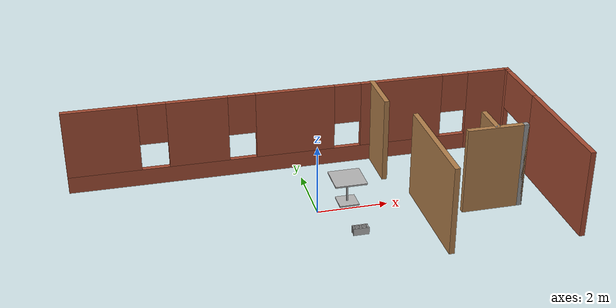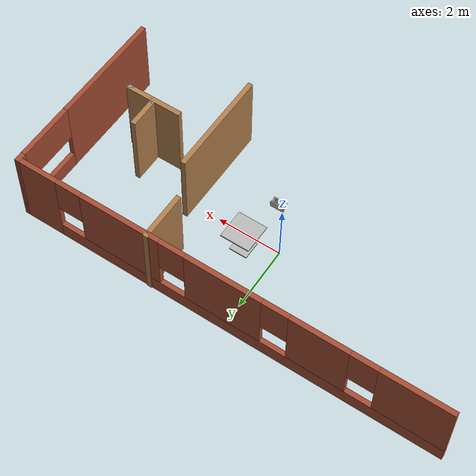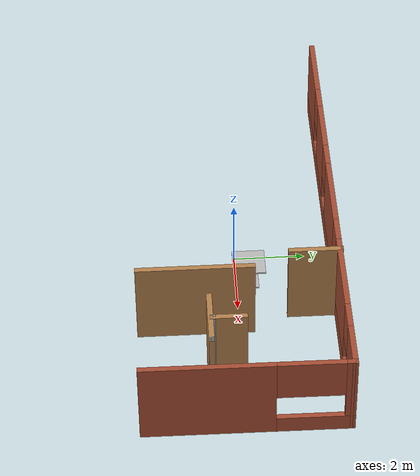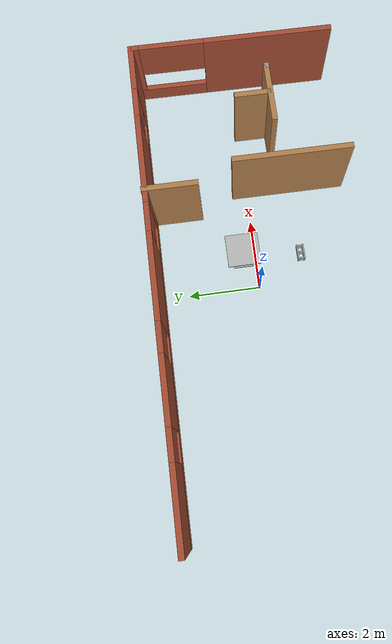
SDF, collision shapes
<sdf version="1.7">
 <model name="house1">
  <link name="Wall_11">
   <pose>2.34531 2.10225 0 0 0 -1.5708</pose>
   <visual name="Wall_11_Visual">
    <pose>0 0 1.25 0 -0 0</pose>
    <geometry><box><size>1.5 0.15 2.5</size></box></geometry>
    <material>
     <script><uri>file://media/materials/scripts/gazebo.material</uri><name>Gazebo/Wood</name></script>
     <ambient>1 1 1 1</ambient>
     <shader type="pixel"/>
    </material>
    <meta><layer>0</layer></meta>
   </visual>
   <collision name="Wall_11_Collision">
    <pose>0 0 1.25 0 -0 0</pose>
    <geometry><box><size>1.5 0.15 2.5</size></box></geometry>
    <surface>
     <friction>
      <ode><mu>1</mu><mu2>1</mu2><fdir1>0 0 0</fdir1><slip1>0</slip1><slip2>0</slip2></ode>
      <torsional>
       <coefficient>1</coefficient>
       <patch_radius>0</patch_radius>
       <surface_radius>0</surface_radius>
       <use_patch_radius>1</use_patch_radius>
       <ode><slip>0</slip></ode>
      </torsional>
     </friction>
     <bounce><restitution_coefficient>0</restitution_coefficient><threshold>1e+06</threshold></bounce>
     <contact>
      <collide_without_contact>0</collide_without_contact>
      <collide_without_contact_bitmask>1</collide_without_contact_bitmask>
      <collide_bitmask>1</collide_bitmask>
      <ode>
       <soft_cfm>0</soft_cfm>
       <soft_erp>0.2</soft_erp>
       <kp>1e+13</kp>
       <kd>1</kd>
       <max_vel>0.01</max_vel>
       <min_depth>0</min_depth>
      </ode>
      <bullet>
       <split_impulse>1</split_impulse>
       <split_impulse_penetration_threshold>-0.01</split_impulse_penetration_threshold>
       <soft_cfm>0</soft_cfm>
       <soft_erp>0.2</soft_erp>
       <kp>1e+13</kp>
       <kd>1</kd>
      </bullet>
     </contact>
    </surface>
   </collision>
  </link>
  <link name="Wall_13">
   <pose>2.87431 -1.20425 0 0 -0 1.5708</pose>
   <visual name="Wall_13_Visual">
    <pose>0 0 1.25 0 -0 0</pose>
    <geometry><box><size>3.25 0.15 2.5</size></box></geometry>
    <material>
     <script><uri>file://media/materials/scripts/gazebo.material</uri><name>Gazebo/Wood</name></script>
     <ambient>1 1 1 1</ambient>
     <shader type="pixel"/>
    </material>
    <meta><layer>0</layer></meta>
   </visual>
   <collision name="Wall_13_Collision">
    <pose>0 0 1.25 0 -0 0</pose>
    <geometry><box><size>3.25 0.15 2.5</size></box></geometry>
    <surface>
     <friction>
      <ode><mu>1</mu><mu2>1</mu2><fdir1>0 0 0</fdir1><slip1>0</slip1><slip2>0</slip2></ode>
      <torsional>
       <coefficient>1</coefficient>
       <patch_radius>0</patch_radius>
       <surface_radius>0</surface_radius>
       <use_patch_radius>1</use_patch_radius>
       <ode><slip>0</slip></ode>
      </torsional>
     </friction>
     <bounce><restitution_coefficient>0</restitution_coefficient><threshold>1e+06</threshold></bounce>
     <contact>
      <collide_without_contact>0</collide_without_contact>
      <collide_without_contact_bitmask>1</collide_without_contact_bitmask>
      <collide_bitmask>1</collide_bitmask>
      <ode>
       <soft_cfm>0</soft_cfm>
       <soft_erp>0.2</soft_erp>
       <kp>1e+13</kp>
       <kd>1</kd>
       <max_vel>0.01</max_vel>
       <min_depth>0</min_depth>
      </ode>
      <bullet>
       <split_impulse>1</split_impulse>
       <split_impulse_penetration_threshold>-0.01</split_impulse_penetration_threshold>
       <soft_cfm>0</soft_cfm>
       <soft_erp>0.2</soft_erp>
       <kp>1e+13</kp>
       <kd>1</kd>
      </bullet>
     </contact>
    </surface>
   </collision>
  </link>
  <link name="Wall_15">
   <pose>4.75531 -0.87975 0 0 -0 0</pose>
   <visual name="Wall_15_Visual">
    <pose>0 0 1.25 0 -0 0</pose>
    <geometry><box><size>1.75 0.15 2.5</size></box></geometry>
    <material>
     <script><uri>file://media/materials/scripts/gazebo.material</uri><name>Gazebo/Wood</name></script>
     <ambient>1 1 1 1</ambient>
     <shader type="pixel"/>
    </material>
    <meta><layer>0</layer></meta>
   </visual>
   <collision name="Wall_15_Collision">
    <pose>0 0 1.25 0 -0 0</pose>
    <geometry><box><size>1.75 0.15 2.5</size></box></geometry>
    <surface>
     <friction>
      <ode><mu>1</mu><mu2>1</mu2><fdir1>0 0 0</fdir1><slip1>0</slip1><slip2>0</slip2></ode>
      <torsional>
       <coefficient>1</coefficient>
       <patch_radius>0</patch_radius>
       <surface_radius>0</surface_radius>
       <use_patch_radius>1</use_patch_radius>
       <ode><slip>0</slip></ode>
      </torsional>
     </friction>
     <bounce><restitution_coefficient>0</restitution_coefficient><threshold>1e+06</threshold></bounce>
     <contact>
      <collide_without_contact>0</collide_without_contact>
      <collide_without_contact_bitmask>1</collide_without_contact_bitmask>
      <collide_bitmask>1</collide_bitmask>
      <ode>
       <soft_cfm>0</soft_cfm>
       <soft_erp>0.2</soft_erp>
       <kp>1e+13</kp>
       <kd>1</kd>
       <max_vel>0.01</max_vel>
       <min_depth>0</min_depth>
      </ode>
      <bullet>
       <split_impulse>1</split_impulse>
       <split_impulse_penetration_threshold>-0.01</split_impulse_penetration_threshold>
       <soft_cfm>0</soft_cfm>
       <soft_erp>0.2</soft_erp>
       <kp>1e+13</kp>
       <kd>1</kd>
      </bullet>
     </contact>
    </surface>
   </collision>
  </link>
  <link name="Wall_16">
   <pose>5.55531 -0.87975 0 0 -0 0</pose>
   <visual name="Wall_16_Visual">
    <pose>0 0 1.25 0 -0 0</pose>
    <geometry><box><size>0.15 0.15 2.5</size></box></geometry>
    <material>
     <script><uri>file://media/materials/scripts/gazebo.material</uri><name>Gazebo/Grey</name></script>
     <ambient>1 1 1 1</ambient>
     <shader type="pixel"/>
    </material>
    <meta><layer>0</layer></meta>
   </visual>
   <collision name="Wall_16_Collision">
    <pose>0 0 1.25 0 -0 0</pose>
    <geometry><box><size>0.15 0.15 2.5</size></box></geometry>
    <surface>
     <friction>
      <ode><mu>1</mu><mu2>1</mu2><fdir1>0 0 0</fdir1><slip1>0</slip1><slip2>0</slip2></ode>
      <torsional>
       <coefficient>1</coefficient>
       <patch_radius>0</patch_radius>
       <surface_radius>0</surface_radius>
       <use_patch_radius>1</use_patch_radius>
       <ode><slip>0</slip></ode>
      </torsional>
     </friction>
     <bounce><restitution_coefficient>0</restitution_coefficient><threshold>1e+06</threshold></bounce>
     <contact>
      <collide_without_contact>0</collide_without_contact>
      <collide_without_contact_bitmask>1</collide_without_contact_bitmask>
      <collide_bitmask>1</collide_bitmask>
      <ode>
       <soft_cfm>0</soft_cfm>
       <soft_erp>0.2</soft_erp>
       <kp>1e+13</kp>
       <kd>1</kd>
       <max_vel>0.01</max_vel>
       <min_depth>0</min_depth>
      </ode>
      <bullet>
       <split_impulse>1</split_impulse>
       <split_impulse_penetration_threshold>-0.01</split_impulse_penetration_threshold>
       <soft_cfm>0</soft_cfm>
       <soft_erp>0.2</soft_erp>
       <kp>1e+13</kp>
       <kd>1</kd>
      </bullet>
     </contact>
    </surface>
   </collision>
  </link>
  <link name="Wall_18">
   <pose>4.74881 -0.39625 0 0 0 -1.5708</pose>
   <visual name="Wall_18_Visual">
    <pose>0 0 1.25 0 -0 0</pose>
    <geometry><box><size>1 0.15 2.5</size></box></geometry>
    <material>
     <script><uri>file://media/materials/scripts/gazebo.material</uri><name>Gazebo/Wood</name></script>
     <ambient>1 1 1 1</ambient>
     <shader type="pixel"/>
    </material>
    <meta><layer>0</layer></meta>
   </visual>
   <collision name="Wall_18_Collision">
    <pose>0 0 1.25 0 -0 0</pose>
    <geometry><box><size>1 0.15 2.5</size></box></geometry>
    <surface>
     <friction>
      <ode><mu>1</mu><mu2>1</mu2><fdir1>0 0 0</fdir1><slip1>0</slip1><slip2>0</slip2></ode>
      <torsional>
       <coefficient>1</coefficient>
       <patch_radius>0</patch_radius>
       <surface_radius>0</surface_radius>
       <use_patch_radius>1</use_patch_radius>
       <ode><slip>0</slip></ode>
      </torsional>
     </friction>
     <bounce><restitution_coefficient>0</restitution_coefficient><threshold>1e+06</threshold></bounce>
     <contact>
      <collide_without_contact>0</collide_without_contact>
      <collide_without_contact_bitmask>1</collide_without_contact_bitmask>
      <collide_bitmask>1</collide_bitmask>
      <ode>
       <soft_cfm>0</soft_cfm>
       <soft_erp>0.2</soft_erp>
       <kp>1e+13</kp>
       <kd>1</kd>
       <max_vel>0.01</max_vel>
       <min_depth>0</min_depth>
      </ode>
      <bullet>
       <split_impulse>1</split_impulse>
       <split_impulse_penetration_threshold>-0.01</split_impulse_penetration_threshold>
       <soft_cfm>0</soft_cfm>
       <soft_erp>0.2</soft_erp>
       <kp>1e+13</kp>
       <kd>1</kd>
      </bullet>
     </contact>
    </surface>
   </collision>
  </link>
  <link name="Wall_19">
   <pose>4.75381 -0.82125 0 0 -0 0</pose>
   <visual name="Wall_19_Visual">
    <pose>0 0 1.25 0 -0 0</pose>
    <geometry><box><size>0.16 0.15 2.5</size></box></geometry>
    <material>
     <script><uri>file://media/materials/scripts/gazebo.material</uri><name>Gazebo/Grey</name></script>
     <ambient>1 1 1 1</ambient>
     <shader type="pixel"/>
    </material>
    <meta><layer>0</layer></meta>
   </visual>
   <collision name="Wall_19_Collision">
    <pose>0 0 1.25 0 -0 0</pose>
    <geometry><box><size>0.16 0.15 2.5</size></box></geometry>
    <surface>
     <friction>
      <ode><mu>1</mu><mu2>1</mu2><fdir1>0 0 0</fdir1><slip1>0</slip1><slip2>0</slip2></ode>
      <torsional>
       <coefficient>1</coefficient>
       <patch_radius>0</patch_radius>
       <surface_radius>0</surface_radius>
       <use_patch_radius>1</use_patch_radius>
       <ode><slip>0</slip></ode>
      </torsional>
     </friction>
     <bounce><restitution_coefficient>0</restitution_coefficient><threshold>1e+06</threshold></bounce>
     <contact>
      <collide_without_contact>0</collide_without_contact>
      <collide_without_contact_bitmask>1</collide_without_contact_bitmask>
      <collide_bitmask>1</collide_bitmask>
      <ode>
       <soft_cfm>0</soft_cfm>
       <soft_erp>0.2</soft_erp>
       <kp>1e+13</kp>
       <kd>1</kd>
       <max_vel>0.01</max_vel>
       <min_depth>0</min_depth>
      </ode>
      <bullet>
       <split_impulse>1</split_impulse>
       <split_impulse_penetration_threshold>-0.01</split_impulse_penetration_threshold>
       <soft_cfm>0</soft_cfm>
       <soft_erp>0.2</soft_erp>
       <kp>1e+13</kp>
       <kd>1</kd>
      </bullet>
     </contact>
    </surface>
   </collision>
  </link>
  <link name="Wall_2">
   <pose>6.54431 -0.0075 0 0 -0 1.56663</pose>
   <visual name="Wall_2_Visual_0">
    <pose>-1.04416 0 1.25 0 -0 0</pose>
    <geometry><box><size>3.5842 0.15 2.5</size></box></geometry>
    <material>
     <script><uri>file://media/materials/scripts/gazebo.material</uri><name>Gazebo/Bricks</name></script>
     <ambient>1 1 1 1</ambient>
     <shader type="pixel"/>
    </material>
    <meta><layer>0</layer></meta>
   </visual>
   <visual name="Wall_2_Visual_1">
    <pose>1.7921 0 0.25 0 -0 0</pose>
    <geometry><box><size>2.08832 0.15 0.5</size></box></geometry>
    <material>
     <script><uri>file://media/materials/scripts/gazebo.material</uri><name>Gazebo/Bricks</name></script>
     <ambient>1 1 1 1</ambient>
     <shader type="pixel"/>
    </material>
    <meta><layer>0</layer></meta>
   </visual>
   <visual name="Wall_2_Visual_2">
    <pose>2.6921 0 1.5 0 -0 0</pose>
    <geometry><box><size>0.288315 0.15 2</size></box></geometry>
    <material>
     <script><uri>file://media/materials/scripts/gazebo.material</uri><name>Gazebo/Bricks</name></script>
     <ambient>1 1 1 1</ambient>
     <shader type="pixel"/>
    </material>
    <meta><layer>0</layer></meta>
   </visual>
   <visual name="Wall_2_Visual_3">
    <pose>1.64794 0 1.9 0 -0 0</pose>
    <geometry><box><size>1.8 0.15 1.2</size></box></geometry>
    <material>
     <script><uri>file://media/materials/scripts/gazebo.material</uri><name>Gazebo/Bricks</name></script>
     <ambient>1 1 1 1</ambient>
     <shader type="pixel"/>
    </material>
    <meta><layer>0</layer></meta>
   </visual>
   <collision name="Wall_2_Collision_0">
    <pose>-1.04416 0 1.25 0 -0 0</pose>
    <geometry><box><size>3.5842 0.15 2.5</size></box></geometry>
    <surface>
     <friction>
      <ode><mu>1</mu><mu2>1</mu2><fdir1>0 0 0</fdir1><slip1>0</slip1><slip2>0</slip2></ode>
      <torsional>
       <coefficient>1</coefficient>
       <patch_radius>0</patch_radius>
       <surface_radius>0</surface_radius>
       <use_patch_radius>1</use_patch_radius>
       <ode><slip>0</slip></ode>
      </torsional>
     </friction>
     <bounce><restitution_coefficient>0</restitution_coefficient><threshold>1e+06</threshold></bounce>
     <contact>
      <collide_without_contact>0</collide_without_contact>
      <collide_without_contact_bitmask>1</collide_without_contact_bitmask>
      <collide_bitmask>1</collide_bitmask>
      <ode>
       <soft_cfm>0</soft_cfm>
       <soft_erp>0.2</soft_erp>
       <kp>1e+13</kp>
       <kd>1</kd>
       <max_vel>0.01</max_vel>
       <min_depth>0</min_depth>
      </ode>
      <bullet>
       <split_impulse>1</split_impulse>
       <split_impulse_penetration_threshold>-0.01</split_impulse_penetration_threshold>
       <soft_cfm>0</soft_cfm>
       <soft_erp>0.2</soft_erp>
       <kp>1e+13</kp>
       <kd>1</kd>
      </bullet>
     </contact>
    </surface>
   </collision>
   <collision name="Wall_2_Collision_1">
    <pose>1.7921 0 0.25 0 -0 0</pose>
    <geometry><box><size>2.08832 0.15 0.5</size></box></geometry>
    <surface>
     <friction>
      <ode><mu>1</mu><mu2>1</mu2><fdir1>0 0 0</fdir1><slip1>0</slip1><slip2>0</slip2></ode>
      <torsional>
       <coefficient>1</coefficient>
       <patch_radius>0</patch_radius>
       <surface_radius>0</surface_radius>
       <use_patch_radius>1</use_patch_radius>
       <ode><slip>0</slip></ode>
      </torsional>
     </friction>
     <bounce><restitution_coefficient>0</restitution_coefficient><threshold>1e+06</threshold></bounce>
     <contact>
      <collide_without_contact>0</collide_without_contact>
      <collide_without_contact_bitmask>1</collide_without_contact_bitmask>
      <collide_bitmask>1</collide_bitmask>
      <ode>
       <soft_cfm>0</soft_cfm>
       <soft_erp>0.2</soft_erp>
       <kp>1e+13</kp>
       <kd>1</kd>
       <max_vel>0.01</max_vel>
       <min_depth>0</min_depth>
      </ode>
      <bullet>
       <split_impulse>1</split_impulse>
       <split_impulse_penetration_threshold>-0.01</split_impulse_penetration_threshold>
       <soft_cfm>0</soft_cfm>
       <soft_erp>0.2</soft_erp>
       <kp>1e+13</kp>
       <kd>1</kd>
      </bullet>
     </contact>
    </surface>
   </collision>
   <collision name="Wall_2_Collision_2">
    <pose>2.6921 0 1.5 0 -0 0</pose>
    <geometry><box><size>0.288315 0.15 2</size></box></geometry>
    <surface>
     <friction>
      <ode><mu>1</mu><mu2>1</mu2><fdir1>0 0 0</fdir1><slip1>0</slip1><slip2>0</slip2></ode>
      <torsional>
       <coefficient>1</coefficient>
       <patch_radius>0</patch_radius>
       <surface_radius>0</surface_radius>
       <use_patch_radius>1</use_patch_radius>
       <ode><slip>0</slip></ode>
      </torsional>
     </friction>
     <bounce><restitution_coefficient>0</restitution_coefficient><threshold>1e+06</threshold></bounce>
     <contact>
      <collide_without_contact>0</collide_without_contact>
      <collide_without_contact_bitmask>1</collide_without_contact_bitmask>
      <collide_bitmask>1</collide_bitmask>
      <ode>
       <soft_cfm>0</soft_cfm>
       <soft_erp>0.2</soft_erp>
       <kp>1e+13</kp>
       <kd>1</kd>
       <max_vel>0.01</max_vel>
       <min_depth>0</min_depth>
      </ode>
      <bullet>
       <split_impulse>1</split_impulse>
       <split_impulse_penetration_threshold>-0.01</split_impulse_penetration_threshold>
       <soft_cfm>0</soft_cfm>
       <soft_erp>0.2</soft_erp>
       <kp>1e+13</kp>
       <kd>1</kd>
      </bullet>
     </contact>
    </surface>
   </collision>
   <collision name="Wall_2_Collision_3">
    <pose>1.64794 0 1.9 0 -0 0</pose>
    <geometry><box><size>1.8 0.15 1.2</size></box></geometry>
    <surface>
     <friction>
      <ode><mu>1</mu><mu2>1</mu2><fdir1>0 0 0</fdir1><slip1>0</slip1><slip2>0</slip2></ode>
      <torsional>
       <coefficient>1</coefficient>
       <patch_radius>0</patch_radius>
       <surface_radius>0</surface_radius>
       <use_patch_radius>1</use_patch_radius>
       <ode><slip>0</slip></ode>
      </torsional>
     </friction>
     <bounce><restitution_coefficient>0</restitution_coefficient><threshold>1e+06</threshold></bounce>
     <contact>
      <collide_without_contact>0</collide_without_contact>
      <collide_without_contact_bitmask>1</collide_without_contact_bitmask>
      <collide_bitmask>1</collide_bitmask>
      <ode>
       <soft_cfm>0</soft_cfm>
       <soft_erp>0.2</soft_erp>
       <kp>1e+13</kp>
       <kd>1</kd>
       <max_vel>0.01</max_vel>
       <min_depth>0</min_depth>
      </ode>
      <bullet>
       <split_impulse>1</split_impulse>
       <split_impulse_penetration_threshold>-0.01</split_impulse_penetration_threshold>
       <soft_cfm>0</soft_cfm>
       <soft_erp>0.2</soft_erp>
       <kp>1e+13</kp>
       <kd>1</kd>
      </bullet>
     </contact>
    </surface>
   </collision>
  </link>
  <link name="Wall_20">
   <pose>4.76381 -0.82125 0 0 -0 0</pose>
   <visual name="Wall_20_Visual">
    <pose>0 0 1.25 0 -0 0</pose>
    <geometry><box><size>0.16 0.15 2.5</size></box></geometry>
    <material>
     <script><uri>file://media/materials/scripts/gazebo.material</uri><name>Gazebo/Grey</name></script>
     <ambient>1 1 1 1</ambient>
     <shader type="pixel"/>
    </material>
    <meta><layer>0</layer></meta>
   </visual>
   <collision name="Wall_20_Collision">
    <pose>0 0 1.25 0 -0 0</pose>
    <geometry><box><size>0.16 0.15 2.5</size></box></geometry>
    <surface>
     <friction>
      <ode><mu>1</mu><mu2>1</mu2><fdir1>0 0 0</fdir1><slip1>0</slip1><slip2>0</slip2></ode>
      <torsional>
       <coefficient>1</coefficient>
       <patch_radius>0</patch_radius>
       <surface_radius>0</surface_radius>
       <use_patch_radius>1</use_patch_radius>
       <ode><slip>0</slip></ode>
      </torsional>
     </friction>
     <bounce><restitution_coefficient>0</restitution_coefficient><threshold>1e+06</threshold></bounce>
     <contact>
      <collide_without_contact>0</collide_without_contact>
      <collide_without_contact_bitmask>1</collide_without_contact_bitmask>
      <collide_bitmask>1</collide_bitmask>
      <ode>
       <soft_cfm>0</soft_cfm>
       <soft_erp>0.2</soft_erp>
       <kp>1e+13</kp>
       <kd>1</kd>
       <max_vel>0.01</max_vel>
       <min_depth>0</min_depth>
      </ode>
      <bullet>
       <split_impulse>1</split_impulse>
       <split_impulse_penetration_threshold>-0.01</split_impulse_penetration_threshold>
       <soft_cfm>0</soft_cfm>
       <soft_erp>0.2</soft_erp>
       <kp>1e+13</kp>
       <kd>1</kd>
      </bullet>
     </contact>
    </surface>
   </collision>
  </link>
  <link name="Wall_3">
   <pose>0.005807 2.75375 0 0 -0 3.14159</pose>
   <visual name="Wall_3_Visual_0">
    <pose>-5.95275 0 1.25 0 -0 0</pose>
    <geometry><box><size>1.3445 0.15 2.5</size></box></geometry>
    <material>
     <script><uri>file://media/materials/scripts/gazebo.material</uri><name>Gazebo/Bricks</name></script>
     <ambient>1 1 1 1</ambient>
     <shader type="pixel"/>
    </material>
    <meta><layer>0</layer></meta>
   </visual>
   <visual name="Wall_3_Visual_1">
    <pose>0.67225 0 0.25 0 -0 0</pose>
    <geometry><box><size>11.9055 0.15 0.5</size></box></geometry>
    <material>
     <script><uri>file://media/materials/scripts/gazebo.material</uri><name>Gazebo/Bricks</name></script>
     <ambient>1 1 1 1</ambient>
     <shader type="pixel"/>
    </material>
    <meta><layer>0</layer></meta>
   </visual>
   <visual name="Wall_3_Visual_2">
    <pose>-3.22475 0 1.5 0 -0 0</pose>
    <geometry><box><size>2.5115 0.15 2</size></box></geometry>
    <material>
     <script><uri>file://media/materials/scripts/gazebo.material</uri><name>Gazebo/Bricks</name></script>
     <ambient>1 1 1 1</ambient>
     <shader type="pixel"/>
    </material>
    <meta><layer>0</layer></meta>
   </visual>
   <visual name="Wall_3_Visual_3">
    <pose>0.00075 0 1.5 0 -0 0</pose>
    <geometry><box><size>2.3395 0.15 2</size></box></geometry>
    <material>
     <script><uri>file://media/materials/scripts/gazebo.material</uri><name>Gazebo/Bricks</name></script>
     <ambient>1 1 1 1</ambient>
     <shader type="pixel"/>
    </material>
    <meta><layer>0</layer></meta>
   </visual>
   <visual name="Wall_3_Visual_4">
    <pose>2.847 0 1.5 0 -0 0</pose>
    <geometry><box><size>1.753 0.15 2</size></box></geometry>
    <material>
     <script><uri>file://media/materials/scripts/gazebo.material</uri><name>Gazebo/Bricks</name></script>
     <ambient>1 1 1 1</ambient>
     <shader type="pixel"/>
    </material>
    <meta><layer>0</layer></meta>
   </visual>
   <visual name="Wall_3_Visual_5">
    <pose>5.57425 0 1.5 0 -0 0</pose>
    <geometry><box><size>2.1015 0.15 2</size></box></geometry>
    <material>
     <script><uri>file://media/materials/scripts/gazebo.material</uri><name>Gazebo/Bricks</name></script>
     <ambient>1 1 1 1</ambient>
     <shader type="pixel"/>
    </material>
    <meta><layer>0</layer></meta>
   </visual>
   <visual name="Wall_3_Visual_6">
    <pose>-4.8805 0 1.9 0 -0 0</pose>
    <geometry><box><size>0.8 0.15 1.2</size></box></geometry>
    <material>
     <script><uri>file://media/materials/scripts/gazebo.material</uri><name>Gazebo/Bricks</name></script>
     <ambient>1 1 1 1</ambient>
     <shader type="pixel"/>
    </material>
    <meta><layer>0</layer></meta>
   </visual>
   <visual name="Wall_3_Visual_7">
    <pose>-1.569 0 1.9 0 -0 0</pose>
    <geometry><box><size>0.8 0.15 1.2</size></box></geometry>
    <material>
     <script><uri>file://media/materials/scripts/gazebo.material</uri><name>Gazebo/Bricks</name></script>
     <ambient>1 1 1 1</ambient>
     <shader type="pixel"/>
    </material>
    <meta><layer>0</layer></meta>
   </visual>
   <visual name="Wall_3_Visual_8">
    <pose>1.5705 0 1.9 0 -0 0</pose>
    <geometry><box><size>0.8 0.15 1.2</size></box></geometry>
    <material>
     <script><uri>file://media/materials/scripts/gazebo.material</uri><name>Gazebo/Bricks</name></script>
     <ambient>1 1 1 1</ambient>
     <shader type="pixel"/>
    </material>
    <meta><layer>0</layer></meta>
   </visual>
   <visual name="Wall_3_Visual_9">
    <pose>4.1235 0 1.9 0 -0 0</pose>
    <geometry><box><size>0.8 0.15 1.2</size></box></geometry>
    <material>
     <script><uri>file://media/materials/scripts/gazebo.material</uri><name>Gazebo/Bricks</name></script>
     <ambient>1 1 1 1</ambient>
     <shader type="pixel"/>
    </material>
    <meta><layer>0</layer></meta>
   </visual>
   <collision name="Wall_3_Collision_0">
    <pose>-5.95275 0 1.25 0 -0 0</pose>
    <geometry><box><size>1.3445 0.15 2.5</size></box></geometry>
    <surface>
     <friction>
      <ode><mu>1</mu><mu2>1</mu2><fdir1>0 0 0</fdir1><slip1>0</slip1><slip2>0</slip2></ode>
      <torsional>
       <coefficient>1</coefficient>
       <patch_radius>0</patch_radius>
       <surface_radius>0</surface_radius>
       <use_patch_radius>1</use_patch_radius>
       <ode><slip>0</slip></ode>
      </torsional>
     </friction>
     <bounce><restitution_coefficient>0</restitution_coefficient><threshold>1e+06</threshold></bounce>
     <contact>
      <collide_without_contact>0</collide_without_contact>
      <collide_without_contact_bitmask>1</collide_without_contact_bitmask>
      <collide_bitmask>1</collide_bitmask>
      <ode>
       <soft_cfm>0</soft_cfm>
       <soft_erp>0.2</soft_erp>
       <kp>1e+13</kp>
       <kd>1</kd>
       <max_vel>0.01</max_vel>
       <min_depth>0</min_depth>
      </ode>
      <bullet>
       <split_impulse>1</split_impulse>
       <split_impulse_penetration_threshold>-0.01</split_impulse_penetration_threshold>
       <soft_cfm>0</soft_cfm>
       <soft_erp>0.2</soft_erp>
       <kp>1e+13</kp>
       <kd>1</kd>
      </bullet>
     </contact>
    </surface>
   </collision>
   <collision name="Wall_3_Collision_2">
    <pose>-3.22475 0 1.5 0 -0 0</pose>
    <geometry><box><size>2.5115 0.15 2</size></box></geometry>
    <surface>
     <friction>
      <ode><mu>1</mu><mu2>1</mu2><fdir1>0 0 0</fdir1><slip1>0</slip1><slip2>0</slip2></ode>
      <torsional>
       <coefficient>1</coefficient>
       <patch_radius>0</patch_radius>
       <surface_radius>0</surface_radius>
       <use_patch_radius>1</use_patch_radius>
       <ode><slip>0</slip></ode>
      </torsional>
     </friction>
     <bounce><restitution_coefficient>0</restitution_coefficient><threshold>1e+06</threshold></bounce>
     <contact>
      <collide_without_contact>0</collide_without_contact>
      <collide_without_contact_bitmask>1</collide_without_contact_bitmask>
      <collide_bitmask>1</collide_bitmask>
      <ode>
       <soft_cfm>0</soft_cfm>
       <soft_erp>0.2</soft_erp>
       <kp>1e+13</kp>
       <kd>1</kd>
       <max_vel>0.01</max_vel>
       <min_depth>0</min_depth>
      </ode>
      <bullet>
       <split_impulse>1</split_impulse>
       <split_impulse_penetration_threshold>-0.01</split_impulse_penetration_threshold>
       <soft_cfm>0</soft_cfm>
       <soft_erp>0.2</soft_erp>
       <kp>1e+13</kp>
       <kd>1</kd>
      </bullet>
     </contact>
    </surface>
   </collision>
   <collision name="Wall_3_Collision_1">
    <pose>0.67225 0 0.25 0 -0 0</pose>
    <geometry><box><size>11.9055 0.15 0.5</size></box></geometry>
    <surface>
     <friction>
      <ode><mu>1</mu><mu2>1</mu2><fdir1>0 0 0</fdir1><slip1>0</slip1><slip2>0</slip2></ode>
      <torsional>
       <coefficient>1</coefficient>
       <patch_radius>0</patch_radius>
       <surface_radius>0</surface_radius>
       <use_patch_radius>1</use_patch_radius>
       <ode><slip>0</slip></ode>
      </torsional>
     </friction>
     <bounce><restitution_coefficient>0</restitution_coefficient><threshold>1e+06</threshold></bounce>
     <contact>
      <collide_without_contact>0</collide_without_contact>
      <collide_without_contact_bitmask>1</collide_without_contact_bitmask>
      <collide_bitmask>1</collide_bitmask>
      <ode>
       <soft_cfm>0</soft_cfm>
       <soft_erp>0.2</soft_erp>
       <kp>1e+13</kp>
       <kd>1</kd>
       <max_vel>0.01</max_vel>
       <min_depth>0</min_depth>
      </ode>
      <bullet>
       <split_impulse>1</split_impulse>
       <split_impulse_penetration_threshold>-0.01</split_impulse_penetration_threshold>
       <soft_cfm>0</soft_cfm>
       <soft_erp>0.2</soft_erp>
       <kp>1e+13</kp>
       <kd>1</kd>
      </bullet>
     </contact>
    </surface>
   </collision>
   <collision name="Wall_3_Collision_3">
    <pose>0.00075 0 1.5 0 -0 0</pose>
    <geometry><box><size>2.3395 0.15 2</size></box></geometry>
    <surface>
     <friction>
      <ode><mu>1</mu><mu2>1</mu2><fdir1>0 0 0</fdir1><slip1>0</slip1><slip2>0</slip2></ode>
      <torsional>
       <coefficient>1</coefficient>
       <patch_radius>0</patch_radius>
       <surface_radius>0</surface_radius>
       <use_patch_radius>1</use_patch_radius>
       <ode><slip>0</slip></ode>
      </torsional>
     </friction>
     <bounce><restitution_coefficient>0</restitution_coefficient><threshold>1e+06</threshold></bounce>
     <contact>
      <collide_without_contact>0</collide_without_contact>
      <collide_without_contact_bitmask>1</collide_without_contact_bitmask>
      <collide_bitmask>1</collide_bitmask>
      <ode>
       <soft_cfm>0</soft_cfm>
       <soft_erp>0.2</soft_erp>
       <kp>1e+13</kp>
       <kd>1</kd>
       <max_vel>0.01</max_vel>
       <min_depth>0</min_depth>
      </ode>
      <bullet>
       <split_impulse>1</split_impulse>
       <split_impulse_penetration_threshold>-0.01</split_impulse_penetration_threshold>
       <soft_cfm>0</soft_cfm>
       <soft_erp>0.2</soft_erp>
       <kp>1e+13</kp>
       <kd>1</kd>
      </bullet>
     </contact>
    </surface>
   </collision>
   <collision name="Wall_3_Collision_4">
    <pose>2.847 0 1.5 0 -0 0</pose>
    <geometry><box><size>1.753 0.15 2</size></box></geometry>
    <surface>
     <friction>
      <ode><mu>1</mu><mu2>1</mu2><fdir1>0 0 0</fdir1><slip1>0</slip1><slip2>0</slip2></ode>
      <torsional>
       <coefficient>1</coefficient>
       <patch_radius>0</patch_radius>
       <surface_radius>0</surface_radius>
       <use_patch_radius>1</use_patch_radius>
       <ode><slip>0</slip></ode>
      </torsional>
     </friction>
     <bounce><restitution_coefficient>0</restitution_coefficient><threshold>1e+06</threshold></bounce>
     <contact>
      <collide_without_contact>0</collide_without_contact>
      <collide_without_contact_bitmask>1</collide_without_contact_bitmask>
      <collide_bitmask>1</collide_bitmask>
      <ode>
       <soft_cfm>0</soft_cfm>
       <soft_erp>0.2</soft_erp>
       <kp>1e+13</kp>
       <kd>1</kd>
       <max_vel>0.01</max_vel>
       <min_depth>0</min_depth>
      </ode>
      <bullet>
       <split_impulse>1</split_impulse>
       <split_impulse_penetration_threshold>-0.01</split_impulse_penetration_threshold>
       <soft_cfm>0</soft_cfm>
       <soft_erp>0.2</soft_erp>
       <kp>1e+13</kp>
       <kd>1</kd>
      </bullet>
     </contact>
    </surface>
   </collision>
   <collision name="Wall_3_Collision_5">
    <pose>5.57425 0 1.5 0 -0 0</pose>
    <geometry><box><size>2.1015 0.15 2</size></box></geometry>
    <surface>
     <friction>
      <ode><mu>1</mu><mu2>1</mu2><fdir1>0 0 0</fdir1><slip1>0</slip1><slip2>0</slip2></ode>
      <torsional>
       <coefficient>1</coefficient>
       <patch_radius>0</patch_radius>
       <surface_radius>0</surface_radius>
       <use_patch_radius>1</use_patch_radius>
       <ode><slip>0</slip></ode>
      </torsional>
     </friction>
     <bounce><restitution_coefficient>0</restitution_coefficient><threshold>1e+06</threshold></bounce>
     <contact>
      <collide_without_contact>0</collide_without_contact>
      <collide_without_contact_bitmask>1</collide_without_contact_bitmask>
      <collide_bitmask>1</collide_bitmask>
      <ode>
       <soft_cfm>0</soft_cfm>
       <soft_erp>0.2</soft_erp>
       <kp>1e+13</kp>
       <kd>1</kd>
       <max_vel>0.01</max_vel>
       <min_depth>0</min_depth>
      </ode>
      <bullet>
       <split_impulse>1</split_impulse>
       <split_impulse_penetration_threshold>-0.01</split_impulse_penetration_threshold>
       <soft_cfm>0</soft_cfm>
       <soft_erp>0.2</soft_erp>
       <kp>1e+13</kp>
       <kd>1</kd>
      </bullet>
     </contact>
    </surface>
   </collision>
   <collision name="Wall_3_Collision_6">
    <pose>-4.8805 0 1.9 0 -0 0</pose>
    <geometry><box><size>0.8 0.15 1.2</size></box></geometry>
    <surface>
     <friction>
      <ode><mu>1</mu><mu2>1</mu2><fdir1>0 0 0</fdir1><slip1>0</slip1><slip2>0</slip2></ode>
      <torsional>
       <coefficient>1</coefficient>
       <patch_radius>0</patch_radius>
       <surface_radius>0</surface_radius>
       <use_patch_radius>1</use_patch_radius>
       <ode><slip>0</slip></ode>
      </torsional>
     </friction>
     <bounce><restitution_coefficient>0</restitution_coefficient><threshold>1e+06</threshold></bounce>
     <contact>
      <collide_without_contact>0</collide_without_contact>
      <collide_without_contact_bitmask>1</collide_without_contact_bitmask>
      <collide_bitmask>1</collide_bitmask>
      <ode>
       <soft_cfm>0</soft_cfm>
       <soft_erp>0.2</soft_erp>
       <kp>1e+13</kp>
       <kd>1</kd>
       <max_vel>0.01</max_vel>
       <min_depth>0</min_depth>
      </ode>
      <bullet>
       <split_impulse>1</split_impulse>
       <split_impulse_penetration_threshold>-0.01</split_impulse_penetration_threshold>
       <soft_cfm>0</soft_cfm>
       <soft_erp>0.2</soft_erp>
       <kp>1e+13</kp>
       <kd>1</kd>
      </bullet>
     </contact>
    </surface>
   </collision>
   <collision name="Wall_3_Collision_7">
    <pose>-1.569 0 1.9 0 -0 0</pose>
    <geometry><box><size>0.8 0.15 1.2</size></box></geometry>
    <surface>
     <friction>
      <ode><mu>1</mu><mu2>1</mu2><fdir1>0 0 0</fdir1><slip1>0</slip1><slip2>0</slip2></ode>
      <torsional>
       <coefficient>1</coefficient>
       <patch_radius>0</patch_radius>
       <surface_radius>0</surface_radius>
       <use_patch_radius>1</use_patch_radius>
       <ode><slip>0</slip></ode>
      </torsional>
     </friction>
     <bounce><restitution_coefficient>0</restitution_coefficient><threshold>1e+06</threshold></bounce>
     <contact>
      <collide_without_contact>0</collide_without_contact>
      <collide_without_contact_bitmask>1</collide_without_contact_bitmask>
      <collide_bitmask>1</collide_bitmask>
      <ode>
       <soft_cfm>0</soft_cfm>
       <soft_erp>0.2</soft_erp>
       <kp>1e+13</kp>
       <kd>1</kd>
       <max_vel>0.01</max_vel>
       <min_depth>0</min_depth>
      </ode>
      <bullet>
       <split_impulse>1</split_impulse>
       <split_impulse_penetration_threshold>-0.01</split_impulse_penetration_threshold>
       <soft_cfm>0</soft_cfm>
       <soft_erp>0.2</soft_erp>
       <kp>1e+13</kp>
       <kd>1</kd>
      </bullet>
     </contact>
    </surface>
   </collision>
   <collision name="Wall_3_Collision_8">
    <pose>1.5705 0 1.9 0 -0 0</pose>
    <geometry><box><size>0.8 0.15 1.2</size></box></geometry>
    <surface>
     <friction>
      <ode><mu>1</mu><mu2>1</mu2><fdir1>0 0 0</fdir1><slip1>0</slip1><slip2>0</slip2></ode>
      <torsional>
       <coefficient>1</coefficient>
       <patch_radius>0</patch_radius>
       <surface_radius>0</surface_radius>
       <use_patch_radius>1</use_patch_radius>
       <ode><slip>0</slip></ode>
      </torsional>
     </friction>
     <bounce><restitution_coefficient>0</restitution_coefficient><threshold>1e+06</threshold></bounce>
     <contact>
      <collide_without_contact>0</collide_without_contact>
      <collide_without_contact_bitmask>1</collide_without_contact_bitmask>
      <collide_bitmask>1</collide_bitmask>
      <ode>
       <soft_cfm>0</soft_cfm>
       <soft_erp>0.2</soft_erp>
       <kp>1e+13</kp>
       <kd>1</kd>
       <max_vel>0.01</max_vel>
       <min_depth>0</min_depth>
      </ode>
      <bullet>
       <split_impulse>1</split_impulse>
       <split_impulse_penetration_threshold>-0.01</split_impulse_penetration_threshold>
       <soft_cfm>0</soft_cfm>
       <soft_erp>0.2</soft_erp>
       <kp>1e+13</kp>
       <kd>1</kd>
      </bullet>
     </contact>
    </surface>
   </collision>
   <collision name="Wall_3_Collision_9">
    <pose>4.1235 0 1.9 0 -0 0</pose>
    <geometry><box><size>0.8 0.15 1.2</size></box></geometry>
    <surface>
     <friction>
      <ode><mu>1</mu><mu2>1</mu2><fdir1>0 0 0</fdir1><slip1>0</slip1><slip2>0</slip2></ode>
      <torsional>
       <coefficient>1</coefficient>
       <patch_radius>0</patch_radius>
       <surface_radius>0</surface_radius>
       <use_patch_radius>1</use_patch_radius>
       <ode><slip>0</slip></ode>
      </torsional>
     </friction>
     <bounce><restitution_coefficient>0</restitution_coefficient><threshold>1e+06</threshold></bounce>
     <contact>
      <collide_without_contact>0</collide_without_contact>
      <collide_without_contact_bitmask>1</collide_without_contact_bitmask>
      <collide_bitmask>1</collide_bitmask>
      <ode>
       <soft_cfm>0</soft_cfm>
       <soft_erp>0.2</soft_erp>
       <kp>1e+13</kp>
       <kd>1</kd>
       <max_vel>0.01</max_vel>
       <min_depth>0</min_depth>
      </ode>
      <bullet>
       <split_impulse>1</split_impulse>
       <split_impulse_penetration_threshold>-0.01</split_impulse_penetration_threshold>
       <soft_cfm>0</soft_cfm>
       <soft_erp>0.2</soft_erp>
       <kp>1e+13</kp>
       <kd>1</kd>
      </bullet>
     </contact>
    </surface>
   </collision>
  </link>
  <model name="cafe_table">
   <static>1</static>
   <link name="link">
    <collision name="surface">
     <pose>0 0 0.755 0 -0 0</pose>
     <geometry><box><size>0.913 0.913 0.04</size></box></geometry>
    </collision>
    <collision name="column">
     <pose>0 0 0.37 0 -0 0</pose>
     <geometry><box><size>0.042 0.042 0.74</size></box></geometry>
    </collision>
    <collision name="base">
     <pose>0 0 0.02 0 -0 0</pose>
     <geometry><box><size>0.56 0.56 0.04</size></box></geometry>
    </collision>
    <visual name="visual">
     <geometry><mesh><uri>model://cafe_table/meshes/cafe_table.dae</uri></mesh></geometry>
    </visual>
   </link>
   <pose>0.947877 0.36583 0 0 -0 0</pose>
  </model>
  <model name="cinder_block">
   <link name="link">
    <inertial>
     <pose>0 0 0.1016 0 -0 0</pose>
     <mass>5</mass>
     <inertia>
      <ixx>0.028705</ixx>
      <ixy>0</ixy>
      <iyy>0.073708</iyy>
      <ixz>0</ixz>
      <iyz>0</iyz>
      <izz>0.06908</izz>
     </inertia>
    </inertial>
    <visual name="visual">
     <geometry><mesh><uri>model://cinder_block/meshes/cinder_block.dae</uri></mesh></geometry>
    </visual>
    <collision name="left">
     <pose>0 -0.08465 0.1016 0 -0 0</pose>
     <geometry><box><size>0.43495 0.0339 0.2032</size></box></geometry>
     <surface>
      <contact><ode><max_vel>0.1</max_vel><min_depth>0.001</min_depth></ode></contact>
      <friction><ode><mu>1</mu><mu2>1</mu2></ode></friction>
     </surface>
    </collision>
    <collision name="right">
     <pose>0 0.08465 0.1016 0 -0 0</pose>
     <geometry><box><size>0.43495 0.0339 0.2032</size></box></geometry>
     <surface>
      <contact><ode><max_vel>0.1</max_vel><min_depth>0.001</min_depth></ode></contact>
      <friction><ode><mu>1</mu><mu2>1</mu2></ode></friction>
     </surface>
    </collision>
    <collision name="front">
     <pose>0.18625 0 0.1016 0 -0 0</pose>
     <geometry><box><size>0.0339 0.1354 0.203</size></box></geometry>
     <surface>
      <contact><ode><max_vel>0.1</max_vel><min_depth>0.001</min_depth></ode></contact>
      <friction><ode><mu>1</mu><mu2>1</mu2></ode></friction>
     </surface>
    </collision>
    <collision name="middle">
     <pose>0 0 0.1016 0 -0 0</pose>
     <geometry><box><size>0.0339 0.1354 0.203</size></box></geometry>
     <surface>
      <contact><ode><max_vel>0.1</max_vel><min_depth>0.001</min_depth></ode></contact>
      <friction><ode><mu>1</mu><mu2>1</mu2></ode></friction>
     </surface>
    </collision>
    <collision name="back">
     <pose>-0.18625 0 0.1016 0 -0 0</pose>
     <geometry><box><size>0.0339 0.1354 0.203</size></box></geometry>
     <surface>
      <contact><ode><max_vel>0.1</max_vel><min_depth>0.001</min_depth></ode></contact>
      <friction><ode><mu>1</mu><mu2>1</mu2></ode></friction>
     </surface>
    </collision>
   </link>
   <pose>0.863376 -1.2988 0 0 -0 0</pose>
  </model>
  <static>1</static>
 </model>
</sdf>
